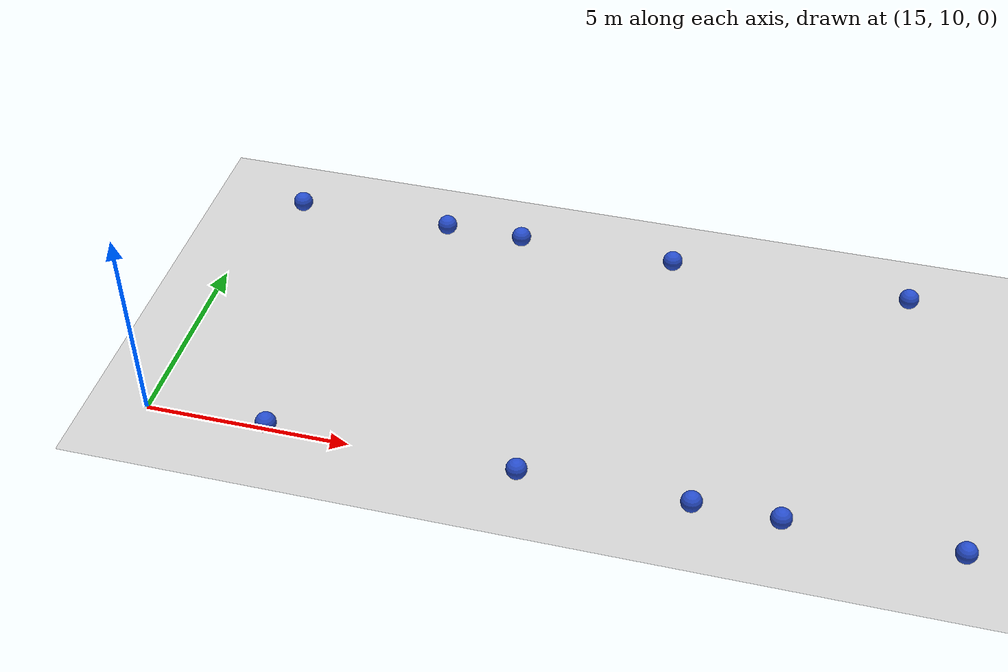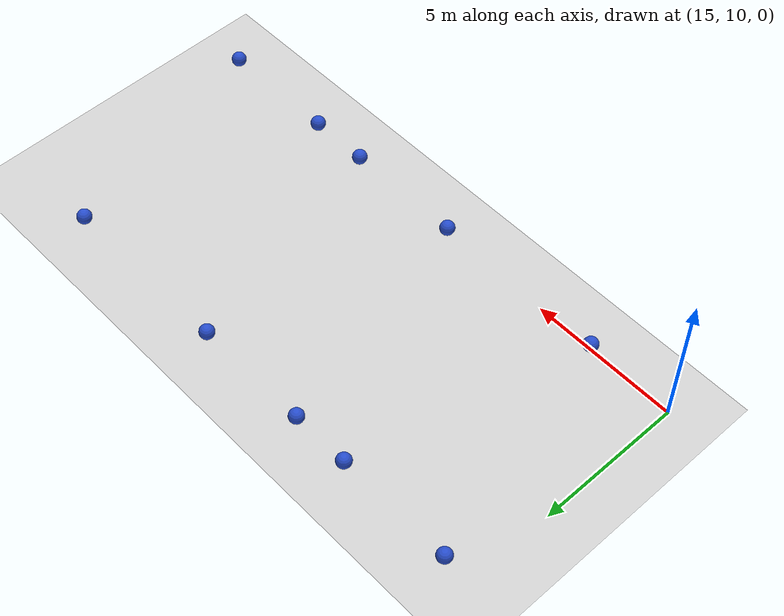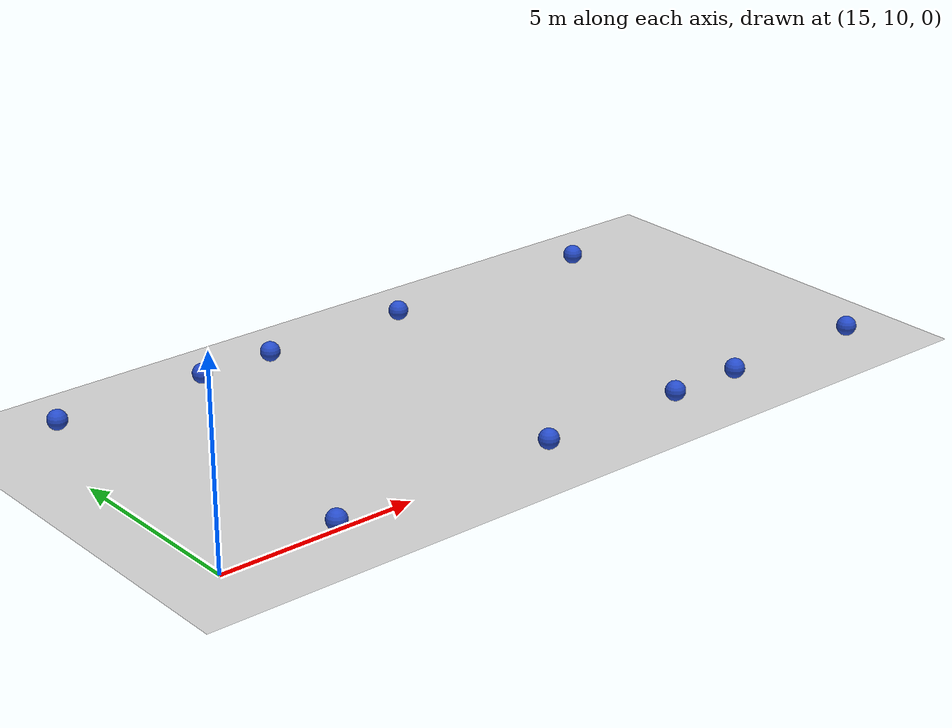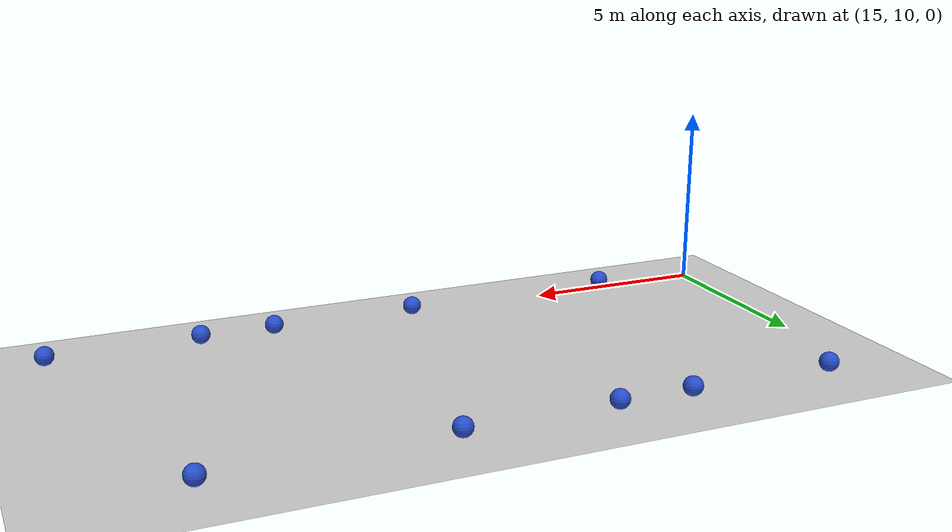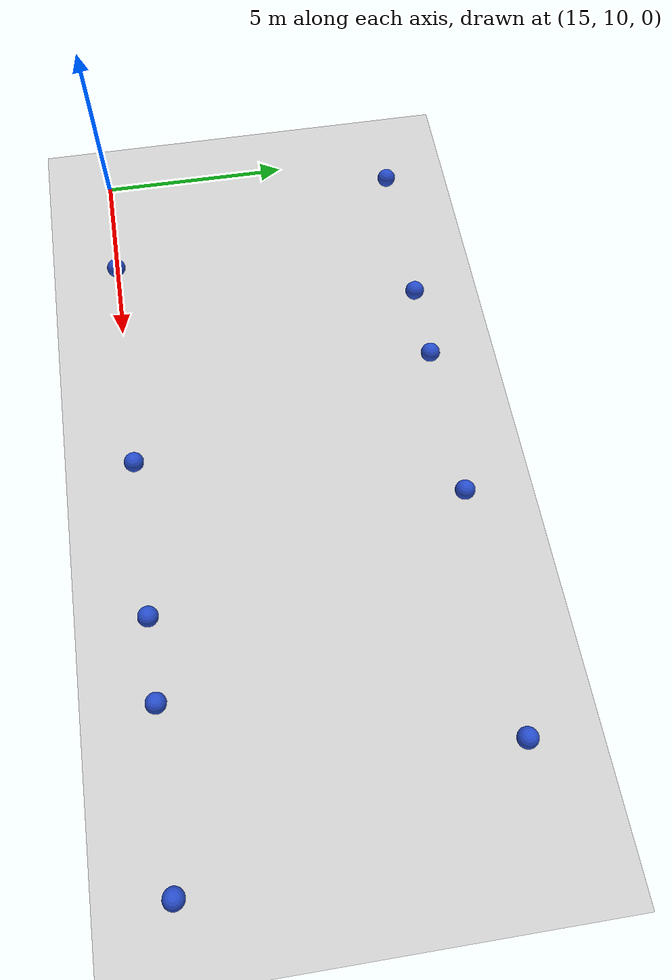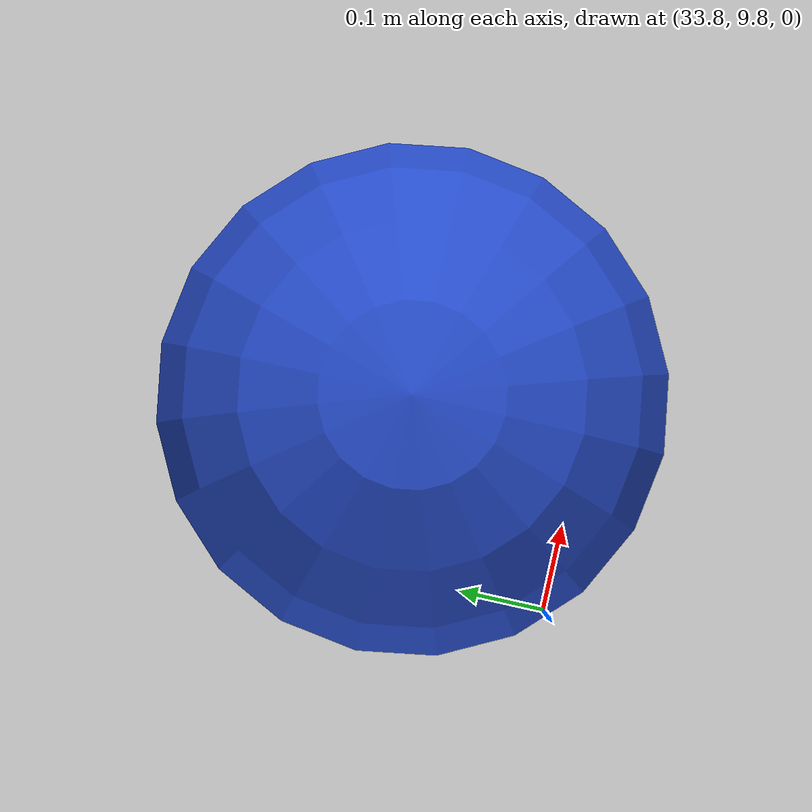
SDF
<sdf version="1.4">
 <world name="default">
  <include><uri>model://ground_plane</uri></include>
  <include><uri>model://sun</uri></include>
  <model name="sphere0">
   <pose>16 18 0.25 0 -0 0</pose>
   <link name="link">
    <inertial>
     <mass>0.1</mass>
     <inertia><ixx>0.01</ixx><ixy>0</ixy><ixz>0</ixz><iyy>0.01</iyy><iyz>0</iyz><izz>0.01</izz></inertia>
    </inertial>
    <collision name="collision"><geometry><sphere><radius>0.25</radius></sphere></geometry></collision>
    <visual name="visual">
     <geometry><sphere><radius>0.25</radius></sphere></geometry>
     <material>
      <script><name>Gazebo/Blue</name><uri>file://media/materials/scripts/gazebo.material</uri></script>
     </material>
    </visual>
   </link>
  </model>
  <model name="sphere1">
   <pose>18 10 0.25 0 -0 0</pose>
   <link name="link">
    <inertial>
     <mass>0.1</mass>
     <inertia><ixx>0.01</ixx><ixy>0</ixy><ixz>0</ixz><iyy>0.01</iyy><iyz>0</iyz><izz>0.01</izz></inertia>
    </inertial>
    <collision name="collision"><geometry><sphere><radius>0.25</radius></sphere></geometry></collision>
    <visual name="visual">
     <geometry><sphere><radius>0.25</radius></sphere></geometry>
     <material>
      <script><name>Gazebo/Blue</name><uri>file://media/materials/scripts/gazebo.material</uri></script>
     </material>
    </visual>
   </link>
  </model>
  <model name="sphere2">
   <pose>20 18 0.25 0 -0 0</pose>
   <link name="link">
    <inertial>
     <mass>0.1</mass>
     <inertia><ixx>0.01</ixx><ixy>0</ixy><ixz>0</ixz><iyy>0.01</iyy><iyz>0</iyz><izz>0.01</izz></inertia>
    </inertial>
    <collision name="collision"><geometry><sphere><radius>0.25</radius></sphere></geometry></collision>
    <visual name="visual">
     <geometry><sphere><radius>0.25</radius></sphere></geometry>
     <material>
      <script><name>Gazebo/Blue</name><uri>file://media/materials/scripts/gazebo.material</uri></script>
     </material>
    </visual>
   </link>
  </model>
  <model name="sphere3">
   <pose>22 18 0.25 0 -0 0</pose>
   <link name="link">
    <inertial>
     <mass>0.1</mass>
     <inertia><ixx>0.01</ixx><ixy>0</ixy><ixz>0</ixz><iyy>0.01</iyy><iyz>0</iyz><izz>0.01</izz></inertia>
    </inertial>
    <collision name="collision"><geometry><sphere><radius>0.25</radius></sphere></geometry></collision>
    <visual name="visual">
     <geometry><sphere><radius>0.25</radius></sphere></geometry>
     <material>
      <script><name>Gazebo/Blue</name><uri>file://media/materials/scripts/gazebo.material</uri></script>
     </material>
    </visual>
   </link>
  </model>
  <model name="sphere4">
   <pose>24 10 0.25 0 -0 0</pose>
   <link name="link">
    <inertial>
     <mass>0.1</mass>
     <inertia><ixx>0.01</ixx><ixy>0</ixy><ixz>0</ixz><iyy>0.01</iyy><iyz>0</iyz><izz>0.01</izz></inertia>
    </inertial>
    <collision name="collision"><geometry><sphere><radius>0.25</radius></sphere></geometry></collision>
    <visual name="visual">
     <geometry><sphere><radius>0.25</radius></sphere></geometry>
     <material>
      <script><name>Gazebo/Blue</name><uri>file://media/materials/scripts/gazebo.material</uri></script>
     </material>
    </visual>
   </link>
  </model>
  <model name="sphere5">
   <pose>26 18 0.25 0 -0 0</pose>
   <link name="link">
    <inertial>
     <mass>0.1</mass>
     <inertia><ixx>0.01</ixx><ixy>0</ixy><ixz>0</ixz><iyy>0.01</iyy><iyz>0</iyz><izz>0.01</izz></inertia>
    </inertial>
    <collision name="collision"><geometry><sphere><radius>0.25</radius></sphere></geometry></collision>
    <visual name="visual">
     <geometry><sphere><radius>0.25</radius></sphere></geometry>
     <material>
      <script><name>Gazebo/Blue</name><uri>file://media/materials/scripts/gazebo.material</uri></script>
     </material>
    </visual>
   </link>
  </model>
  <model name="sphere6">
   <pose>28 10 0.25 0 -0 0</pose>
   <link name="link">
    <inertial>
     <mass>0.1</mass>
     <inertia><ixx>0.01</ixx><ixy>0</ixy><ixz>0</ixz><iyy>0.01</iyy><iyz>0</iyz><izz>0.01</izz></inertia>
    </inertial>
    <collision name="collision"><geometry><sphere><radius>0.25</radius></sphere></geometry></collision>
    <visual name="visual">
     <geometry><sphere><radius>0.25</radius></sphere></geometry>
     <material>
      <script><name>Gazebo/Blue</name><uri>file://media/materials/scripts/gazebo.material</uri></script>
     </material>
    </visual>
   </link>
  </model>
  <model name="sphere7">
   <pose>30 10 0.25 0 -0 0</pose>
   <link name="link">
    <inertial>
     <mass>0.1</mass>
     <inertia><ixx>0.01</ixx><ixy>0</ixy><ixz>0</ixz><iyy>0.01</iyy><iyz>0</iyz><izz>0.01</izz></inertia>
    </inertial>
    <collision name="collision"><geometry><sphere><radius>0.25</radius></sphere></geometry></collision>
    <visual name="visual">
     <geometry><sphere><radius>0.25</radius></sphere></geometry>
     <material>
      <script><name>Gazebo/Blue</name><uri>file://media/materials/scripts/gazebo.material</uri></script>
     </material>
    </visual>
   </link>
  </model>
  <model name="sphere8">
   <pose>32 18 0.25 0 -0 0</pose>
   <link name="link">
    <inertial>
     <mass>0.1</mass>
     <inertia><ixx>0.01</ixx><ixy>0</ixy><ixz>0</ixz><iyy>0.01</iyy><iyz>0</iyz><izz>0.01</izz></inertia>
    </inertial>
    <collision name="collision"><geometry><sphere><radius>0.25</radius></sphere></geometry></collision>
    <visual name="visual">
     <geometry><sphere><radius>0.25</radius></sphere></geometry>
     <material>
      <script><name>Gazebo/Blue</name><uri>file://media/materials/scripts/gazebo.material</uri></script>
     </material>
    </visual>
   </link>
  </model>
  <model name="sphere9">
   <pose>34 10 0.25 0 -0 0</pose>
   <link name="link">
    <inertial>
     <mass>0.1</mass>
     <inertia><ixx>0.01</ixx><ixy>0</ixy><ixz>0</ixz><iyy>0.01</iyy><iyz>0</iyz><izz>0.01</izz></inertia>
    </inertial>
    <collision name="collision"><geometry><sphere><radius>0.25</radius></sphere></geometry></collision>
    <visual name="visual">
     <geometry><sphere><radius>0.25</radius></sphere></geometry>
     <material>
      <script><name>Gazebo/Blue</name><uri>file://media/materials/scripts/gazebo.material</uri></script>
     </material>
    </visual>
   </link>
  </model>
 </world>
</sdf>
